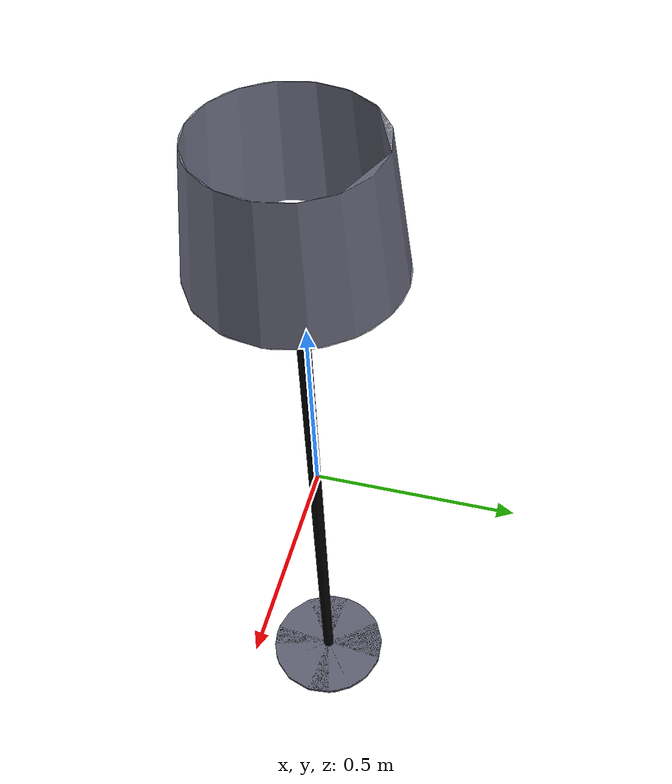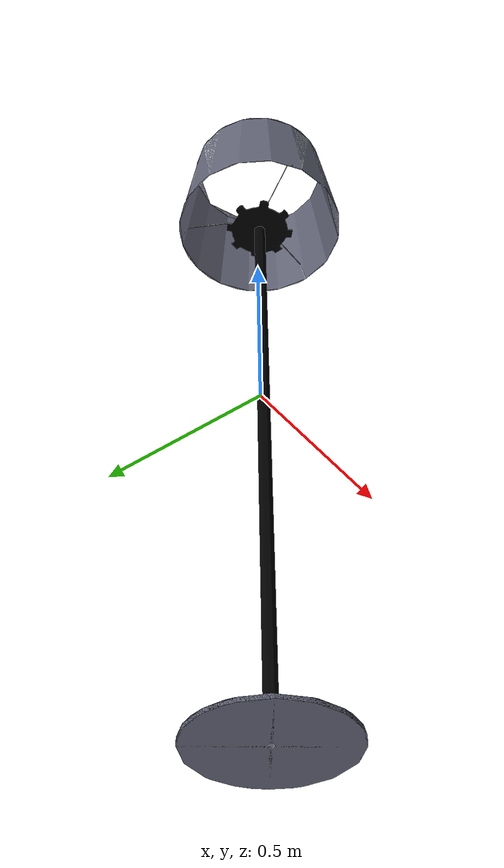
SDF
<?xml version="1.0" ?>

<sdf version="1.4">
    <model name="lamp">
        <static> true </static>
        <link name="lamp_link">
            <collision name="floor_collision">
                <geometry>
                    <box>
                        <size> 0.35 0.42 1.85 </size>
                    </box>
                </geometry>
            </collision>
            <visual name="lamp_mesh">
                <cast_shadows> true </cast_shadows>
                <geometry>
                    <mesh>
                        <uri>model://lamp/lamp.dae</uri>
                    </mesh>
                </geometry>
            </visual>
        </link>
    </model>
</sdf>
